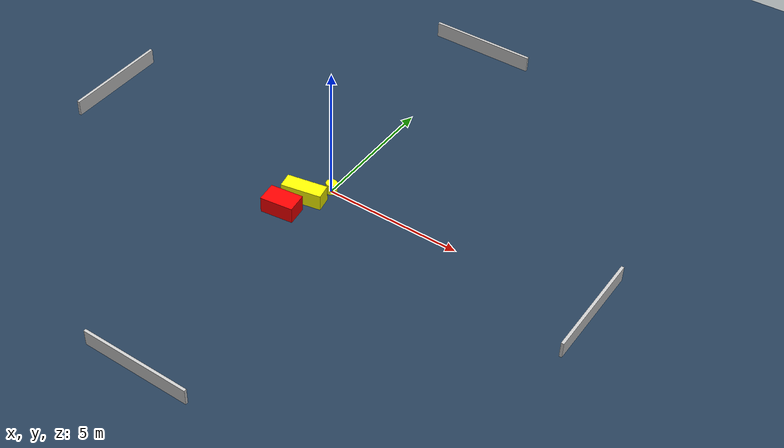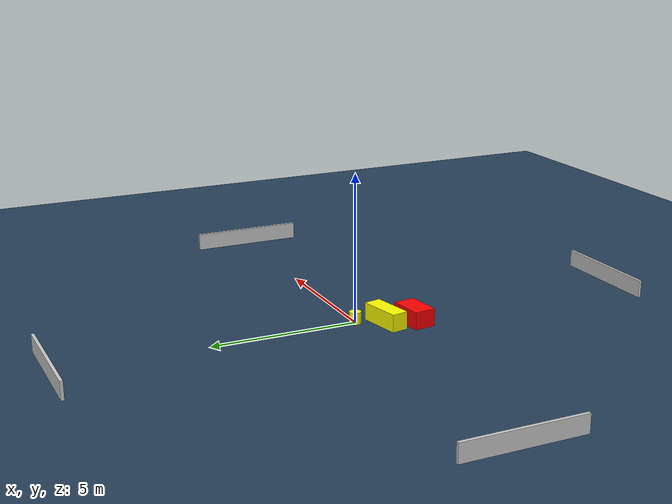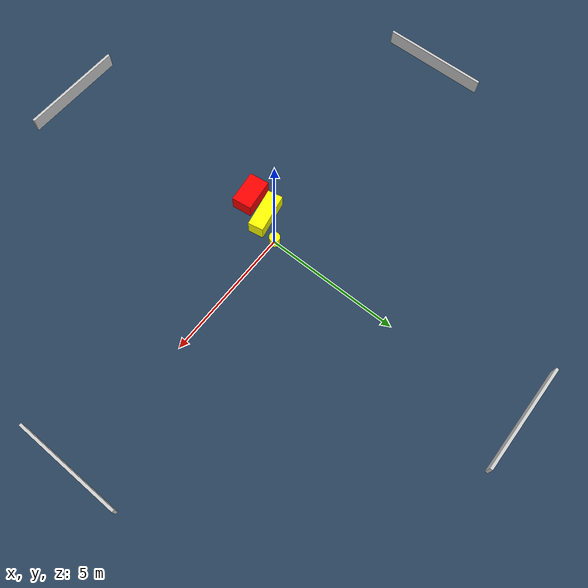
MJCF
<?xml version="1.0" ?>
<mujoco model="generated_environment">
  <option timestep="0.01" integrator="RK4" cone="elliptic"/>
  <default>
    <geom density="1"/>
  </default>
  <asset>
    <texture builtin="gradient" height="3072" name="skybox" rgb1="0.3 0.5 0.7" rgb2="0 0 0" type="skybox" width="512"/>
    <texture builtin="checker" height="300" name="groundplane" rgb1="0.2 0.3 0.4" rgb2="0.1 0.2 0.3" type="2d" width="300"/>
    <material name="groundplane" reflectance="0.2" texrepeat="5 5" texture="groundplane"/>
  </asset>
  <worldbody>
    <light dir="0 0 -1" directional="true" pos="0 0 1.5"/>
    <geom condim="3" friction="0.5 0.005 0.001" material="groundplane" name="floor" pos="0 0 0" size="0 0 0.05" type="plane"/>
    <body name="walls">
      <geom name="wall_1" condim="4" pos="-10.0 0.0 0.3" rgba="0.800000011920929 0.800000011920929 0.800000011920929 1.0" size="0.05 2.0 0.3" type="box"/>
      <geom name="wall_2" condim="4" pos="10.0 0.0 0.3" rgba="0.800000011920929 0.800000011920929 0.800000011920929 1.0" size="0.05 2.0 0.3" type="box"/>
      <geom name="wall_3" condim="4" pos="0.0 -10.0 0.3" rgba="0.800000011920929 0.800000011920929 0.800000011920929 1.0" size="2.0 0.05 0.3" type="box"/>
      <geom name="wall_4" condim="4" pos="0.0 10.0 0.3" rgba="0.800000011920929 0.800000011920929 0.800000011920929 1.0" size="2.0 0.05 0.3" type="box"/>
    </body>
    <body name="robot">
      <joint name="joint_x" type="slide" pos="0 0 0" axis="1 0 0"/>
      <joint name="joint_y" type="slide" pos="0 0 0" axis="0 1 0"/>
      <geom name="robot" type="cylinder" pos="0.0 0.0 0.2" size="0.2 0.2 0.0" mass="5.0" friction="1.0 0.005 0.0001" condim="4" rgba="1.0 1.0 0.0 1.0"/>
    </body>
    <body name="obstacle_1_movable">
      <geom name="obstacle_1_movable" condim="4" pos="-0.5422040524227753 -0.8519846401825268 0.3" euler="0 0 10.895844278600343" friction="0.0 0.005 0.001" rgba="1.0 1.0 0.0 1.0" size="0.7417251792522965 0.28707060495503567 0.3" type="box" mass="0.1"/>
      <joint type="free"/>
    </body>
    <body name="obstacle_2_static">
      <geom name="obstacle_2_static" condim="4" pos="-0.80873953050836 -1.7630994245553937 0.3" euler="0 0 97.23103614670991" friction="0.0 0.005 0.001" rgba="1.0 0.0 0.0 1.0" size="0.37491993629349485 0.604932831749037 0.3" type="box"/>
    </body>
  </worldbody>
  <actuator>
    <motor name="actuator_x" joint="joint_x" gear="1" ctrlrange="-1 1"/>
    <motor name="actuator_y" joint="joint_y" gear="1" ctrlrange="-1 1"/>
  </actuator>
</mujoco>
